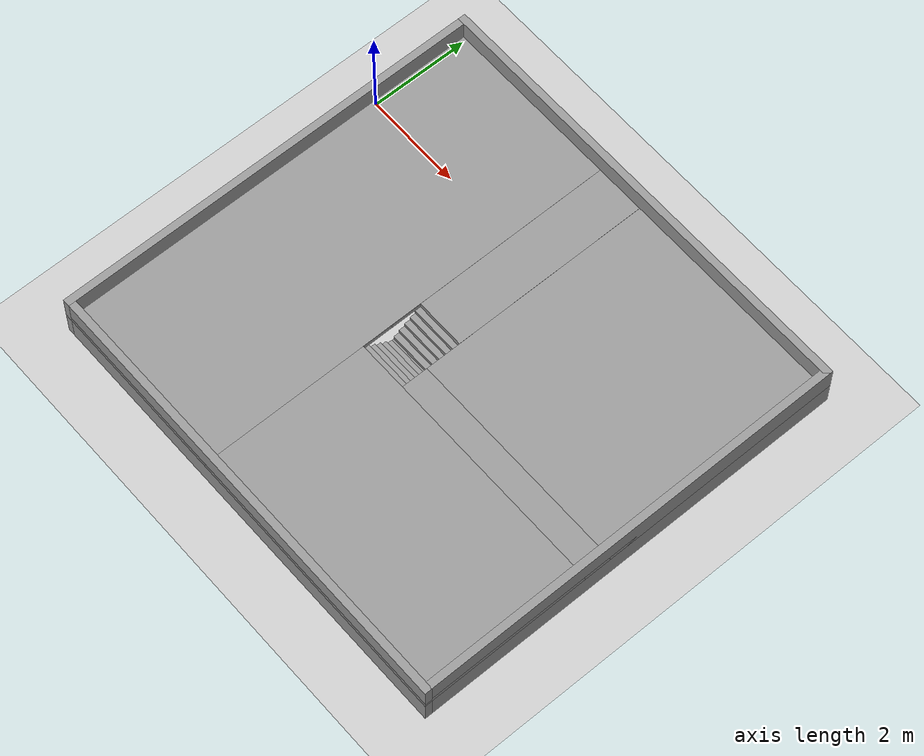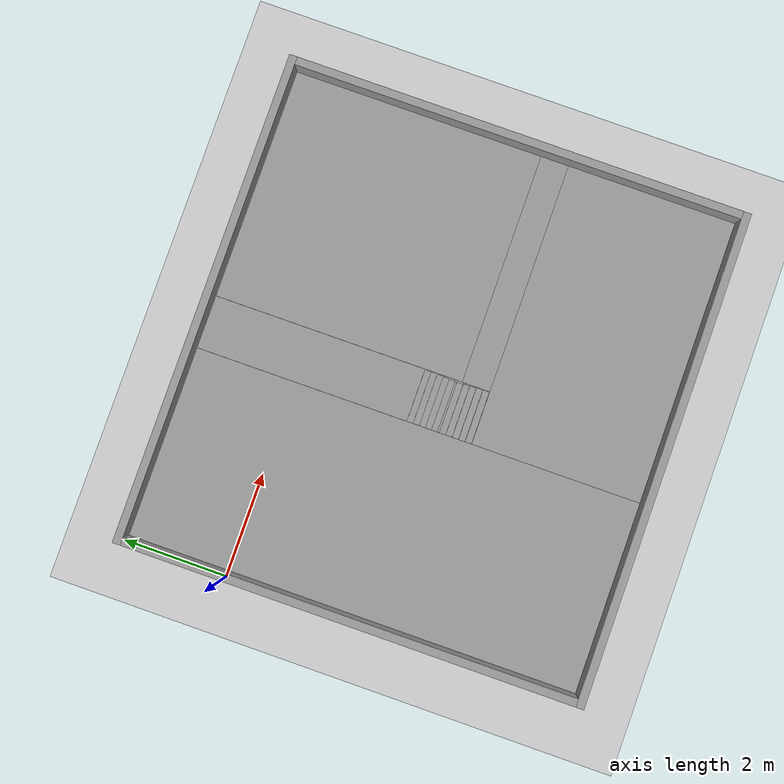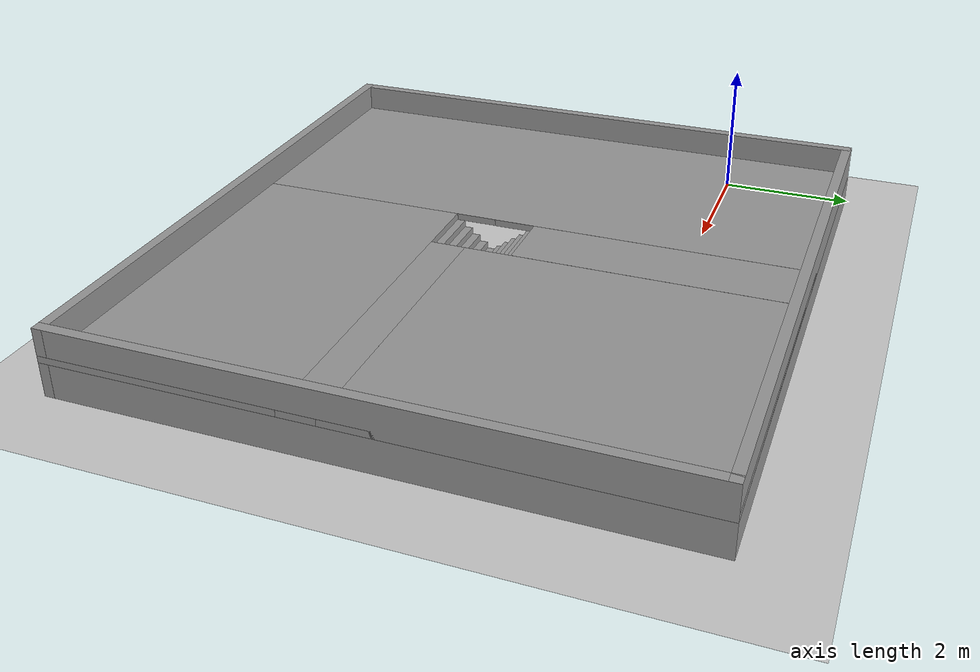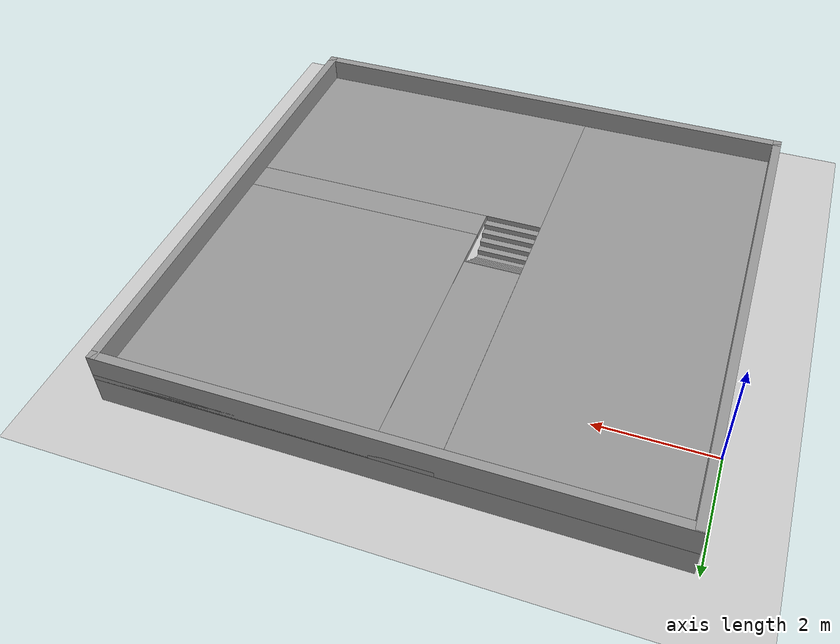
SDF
<sdf version="1.6">
 <world name="default">
  <light name="sun" type="directional">
   <pose>0 0 10 0 -0 0</pose>
   <diffuse>0.8 0.8 0.8 1</diffuse>
   <specular>0.2 0.2 0.2 1</specular>
   <attenuation>
    <range>1000</range>
    <constant>0.9</constant>
    <linear>0.01</linear>
    <quadratic>0.001</quadratic>
   </attenuation>
   <direction>-0.5 0.1 -0.9</direction>
  </light>
  <model name="ground_plane">
   <static>1</static>
   <link name="link">
    <collision name="collision">
     <geometry><plane><normal>0 0 1</normal><size>100 100</size></plane></geometry>
     <surface>
      <contact><collide_bitmask>65535</collide_bitmask></contact>
      <friction><ode><mu>100</mu><mu2>50</mu2></ode></friction>
     </surface>
    </collision>
    <visual name="visual">
     <cast_shadows>0</cast_shadows>
     <geometry><plane><normal>0 0 1</normal><size>100 100</size></plane></geometry>
     <material>
      <script><uri>file://media/materials/scripts/gazebo.material</uri><name>Gazebo/Grey</name></script>
     </material>
    </visual>
   </link>
  </model>
  <gravity>0 0 -9.8</gravity>
  <magnetic_field>6e-06 2.3e-05 -4.2e-05</magnetic_field>
  <atmosphere type="adiabatic"/>
  <physics name="default_physics" default="0" type="ode">
   <max_step_size>0.001</max_step_size>
   <real_time_factor>1</real_time_factor>
   <real_time_update_rate>1000</real_time_update_rate>
  </physics>
  <scene><ambient>0.4 0.4 0.4 1</ambient><background>0.7 0.7 0.7 1</background><shadows>1</shadows></scene>
  <spherical_coordinates>
   <surface_model>EARTH_WGS84</surface_model>
   <latitude_deg>0</latitude_deg>
   <longitude_deg>0</longitude_deg>
   <elevation>0</elevation>
   <heading_deg>0</heading_deg>
  </spherical_coordinates>
  <model name="test_house">
   <pose>4.7 -2.41011 0 0 -0 0</pose>
   <link name="Floor_0">
    <pose>-0 0 0.5 0 -0 0</pose>
    <visual name="Floor_0_Visual_0">
     <pose>-2.7625 0 0.05 0 -0 0</pose>
     <geometry><box><size>3.725 8.76621 0.1</size></box></geometry>
     <material>
      <script><uri>file://media/materials/scripts/gazebo.material</uri><name>Gazebo/Grey</name></script>
      <ambient>1 1 1 1</ambient>
     </material>
     <meta><layer>1</layer></meta>
    </visual>
    <collision name="Floor_0_Collision_0">
     <geometry><box><size>3.725 8.76621 0.1</size></box></geometry>
     <pose>-2.7625 0 0.05 0 -0 0</pose>
    </collision>
    <visual name="Floor_0_Visual_1">
     <pose>1.8625 -2.7065 0.05 0 -0 0</pose>
     <geometry><box><size>5.525 3.35321 0.1</size></box></geometry>
     <material>
      <script><uri>file://media/materials/scripts/gazebo.material</uri><name>Gazebo/Grey</name></script>
      <ambient>1 1 1 1</ambient>
     </material>
     <meta><layer>1</layer></meta>
    </visual>
    <collision name="Floor_0_Collision_1">
     <geometry><box><size>5.525 3.35321 0.1</size></box></geometry>
     <pose>1.8625 -2.7065 0.05 0 -0 0</pose>
    </collision>
    <visual name="Floor_0_Visual_2">
     <pose>2.3625 -0.764894 0.05 0 -0 0</pose>
     <geometry><box><size>4.525 0.53 0.1</size></box></geometry>
     <material>
      <script><uri>file://media/materials/scripts/gazebo.material</uri><name>Gazebo/Grey</name></script>
      <ambient>1 1 1 1</ambient>
     </material>
     <meta><layer>1</layer></meta>
    </visual>
    <collision name="Floor_0_Collision_2">
     <geometry><box><size>4.525 0.53 0.1</size></box></geometry>
     <pose>2.3625 -0.764894 0.05 0 -0 0</pose>
    </collision>
    <visual name="Floor_0_Visual_3">
     <pose>2.36317 1.94161 0.05 0 -0 0</pose>
     <geometry><box><size>4.52366 4.883 0.1</size></box></geometry>
     <material>
      <script><uri>file://media/materials/scripts/gazebo.material</uri><name>Gazebo/Grey</name></script>
      <ambient>1 1 1 1</ambient>
     </material>
     <meta><layer>1</layer></meta>
    </visual>
    <collision name="Floor_0_Collision_3">
     <geometry><box><size>4.52366 4.883 0.1</size></box></geometry>
     <pose>2.36317 1.94161 0.05 0 -0 0</pose>
    </collision>
    <visual name="Floor_0_Visual_4">
     <pose>-0.899329 1.98161 0.05 0 -0 0</pose>
     <geometry><box><size>0.001342 4.803 0.1</size></box></geometry>
     <material>
      <script><uri>file://media/materials/scripts/gazebo.material</uri><name>Gazebo/Grey</name></script>
      <ambient>1 1 1 1</ambient>
     </material>
     <meta><layer>1</layer></meta>
    </visual>
    <collision name="Floor_0_Collision_4">
     <geometry><box><size>0.001342 4.803 0.1</size></box></geometry>
     <pose>-0.899329 1.98161 0.05 0 -0 0</pose>
    </collision>
    <visual name="Floor_0_Visual_5">
     <pose>-0.399329 2.29661 0.05 0 -0 0</pose>
     <geometry><box><size>0.998658 4.173 0.1</size></box></geometry>
     <material>
      <script><uri>file://media/materials/scripts/gazebo.material</uri><name>Gazebo/Grey</name></script>
      <ambient>1 1 1 1</ambient>
     </material>
     <meta><layer>1</layer></meta>
    </visual>
    <collision name="Floor_0_Collision_5">
     <geometry><box><size>0.998658 4.173 0.1</size></box></geometry>
     <pose>-0.399329 2.29661 0.05 0 -0 0</pose>
    </collision>
   </link>
   <link name="Stairs_1">
    <visual name="Stairs_1_Visual_0">
     <pose>-0.4 -0.480894 0.05 0 -0 0</pose>
     <geometry><box><size>1 0.122 0.1</size></box></geometry>
     <material>
      <script><uri>file://media/materials/scripts/gazebo.material</uri><name>Gazebo/Grey</name></script>
      <ambient>1 1 1 1</ambient>
     </material>
     <meta><layer>0</layer></meta>
    </visual>
    <collision name="Stairs_1_Collision_0">
     <geometry><box><size>1 0.122 0.1</size></box></geometry>
     <pose>-0.4 -0.480894 0.05 0 -0 0</pose>
    </collision>
    <visual name="Stairs_1_Visual_1">
     <pose>-0.4 -0.602894 0.15 0 -0 0</pose>
     <geometry><box><size>1 0.122 0.1</size></box></geometry>
     <material>
      <script><uri>file://media/materials/scripts/gazebo.material</uri><name>Gazebo/Grey</name></script>
      <ambient>1 1 1 1</ambient>
     </material>
     <meta><layer>0</layer></meta>
    </visual>
    <collision name="Stairs_1_Collision_1">
     <geometry><box><size>1 0.122 0.1</size></box></geometry>
     <pose>-0.4 -0.602894 0.15 0 -0 0</pose>
    </collision>
    <visual name="Stairs_1_Visual_2">
     <pose>-0.4 -0.724894 0.25 0 -0 0</pose>
     <geometry><box><size>1 0.122 0.1</size></box></geometry>
     <material>
      <script><uri>file://media/materials/scripts/gazebo.material</uri><name>Gazebo/Grey</name></script>
      <ambient>1 1 1 1</ambient>
     </material>
     <meta><layer>0</layer></meta>
    </visual>
    <collision name="Stairs_1_Collision_2">
     <geometry><box><size>1 0.122 0.1</size></box></geometry>
     <pose>-0.4 -0.724894 0.25 0 -0 0</pose>
    </collision>
    <visual name="Stairs_1_Visual_3">
     <pose>-0.4 -0.846894 0.35 0 -0 0</pose>
     <geometry><box><size>1 0.122 0.1</size></box></geometry>
     <material>
      <script><uri>file://media/materials/scripts/gazebo.material</uri><name>Gazebo/Grey</name></script>
      <ambient>1 1 1 1</ambient>
     </material>
     <meta><layer>0</layer></meta>
    </visual>
    <collision name="Stairs_1_Collision_3">
     <geometry><box><size>1 0.122 0.1</size></box></geometry>
     <pose>-0.4 -0.846894 0.35 0 -0 0</pose>
    </collision>
    <visual name="Stairs_1_Visual_4">
     <pose>-0.4 -0.968894 0.45 0 -0 0</pose>
     <geometry><box><size>1 0.122 0.1</size></box></geometry>
     <material>
      <script><uri>file://media/materials/scripts/gazebo.material</uri><name>Gazebo/Grey</name></script>
      <ambient>1 1 1 1</ambient>
     </material>
     <meta><layer>0</layer></meta>
    </visual>
    <collision name="Stairs_1_Collision_4">
     <geometry><box><size>1 0.122 0.1</size></box></geometry>
     <pose>-0.4 -0.968894 0.45 0 -0 0</pose>
    </collision>
   </link>
   <link name="Stairs_3">
    <visual name="Stairs_3_Visual_0">
     <pose>-0.398658 -0.440727 0.041667 0 0 -3.14159</pose>
     <geometry><box><size>1 0.118333 0.083333</size></box></geometry>
     <material>
      <script><uri>file://media/materials/scripts/gazebo.material</uri><name>Gazebo/Grey</name></script>
      <ambient>1 1 1 1</ambient>
     </material>
     <meta><layer>0</layer></meta>
    </visual>
    <collision name="Stairs_3_Collision_0">
     <geometry><box><size>1 0.118333 0.083333</size></box></geometry>
     <pose>-0.398658 -0.440727 0.041667 0 0 -3.14159</pose>
    </collision>
    <visual name="Stairs_3_Visual_1">
     <pose>-0.398658 -0.322394 0.125 0 0 -3.14159</pose>
     <geometry><box><size>1 0.118333 0.083333</size></box></geometry>
     <material>
      <script><uri>file://media/materials/scripts/gazebo.material</uri><name>Gazebo/Grey</name></script>
      <ambient>1 1 1 1</ambient>
     </material>
     <meta><layer>0</layer></meta>
    </visual>
    <collision name="Stairs_3_Collision_1">
     <geometry><box><size>1 0.118333 0.083333</size></box></geometry>
     <pose>-0.398658 -0.322394 0.125 0 0 -3.14159</pose>
    </collision>
    <visual name="Stairs_3_Visual_2">
     <pose>-0.398658 -0.20406 0.208333 0 0 -3.14159</pose>
     <geometry><box><size>1 0.118333 0.083333</size></box></geometry>
     <material>
      <script><uri>file://media/materials/scripts/gazebo.material</uri><name>Gazebo/Grey</name></script>
      <ambient>1 1 1 1</ambient>
     </material>
     <meta><layer>0</layer></meta>
    </visual>
    <collision name="Stairs_3_Collision_2">
     <geometry><box><size>1 0.118333 0.083333</size></box></geometry>
     <pose>-0.398658 -0.20406 0.208333 0 0 -3.14159</pose>
    </collision>
    <visual name="Stairs_3_Visual_3">
     <pose>-0.398658 -0.085727 0.291667 0 0 -3.14159</pose>
     <geometry><box><size>1 0.118333 0.083333</size></box></geometry>
     <material>
      <script><uri>file://media/materials/scripts/gazebo.material</uri><name>Gazebo/Grey</name></script>
      <ambient>1 1 1 1</ambient>
     </material>
     <meta><layer>0</layer></meta>
    </visual>
    <collision name="Stairs_3_Collision_3">
     <geometry><box><size>1 0.118333 0.083333</size></box></geometry>
     <pose>-0.398658 -0.085727 0.291667 0 0 -3.14159</pose>
    </collision>
    <visual name="Stairs_3_Visual_4">
     <pose>-0.398658 0.032606 0.375 0 0 -3.14159</pose>
     <geometry><box><size>1 0.118333 0.083333</size></box></geometry>
     <material>
      <script><uri>file://media/materials/scripts/gazebo.material</uri><name>Gazebo/Grey</name></script>
      <ambient>1 1 1 1</ambient>
     </material>
     <meta><layer>0</layer></meta>
    </visual>
    <collision name="Stairs_3_Collision_4">
     <geometry><box><size>1 0.118333 0.083333</size></box></geometry>
     <pose>-0.398658 0.032606 0.375 0 0 -3.14159</pose>
    </collision>
    <visual name="Stairs_3_Visual_5">
     <pose>-0.398658 0.15094 0.458333 0 0 -3.14159</pose>
     <geometry><box><size>1 0.118333 0.083333</size></box></geometry>
     <material>
      <script><uri>file://media/materials/scripts/gazebo.material</uri><name>Gazebo/Grey</name></script>
      <ambient>1 1 1 1</ambient>
     </material>
     <meta><layer>0</layer></meta>
    </visual>
    <collision name="Stairs_3_Collision_5">
     <geometry><box><size>1 0.118333 0.083333</size></box></geometry>
     <pose>-0.398658 0.15094 0.458333 0 0 -3.14159</pose>
    </collision>
   </link>
   <link name="Wall_10">
    <collision name="Wall_10_Collision">
     <geometry><box><size>8.766 0.15 0.5</size></box></geometry>
     <pose>0 0 0.25 0 -0 0</pose>
    </collision>
    <visual name="Wall_10_Visual">
     <pose>0 0 0.25 0 -0 0</pose>
     <geometry><box><size>8.766 0.15 0.5</size></box></geometry>
     <material>
      <script><uri>file://media/materials/scripts/gazebo.material</uri><name>Gazebo/Grey</name></script>
      <ambient>1 1 1 1</ambient>
     </material>
     <meta><layer>1</layer></meta>
    </visual>
    <pose>4.55 0.000106 0.5 0 -0 -1.5708</pose>
   </link>
   <link name="Wall_11">
    <collision name="Wall_11_Collision">
     <geometry><box><size>9.25 0.15 0.5</size></box></geometry>
     <pose>0 0 0.25 0 -0 0</pose>
    </collision>
    <visual name="Wall_11_Visual">
     <pose>0 0 0.25 0 -0 0</pose>
     <geometry><box><size>9.25 0.15 0.5</size></box></geometry>
     <material>
      <script><uri>file://media/materials/scripts/gazebo.material</uri><name>Gazebo/Grey</name></script>
      <ambient>1 1 1 1</ambient>
     </material>
     <meta><layer>1</layer></meta>
    </visual>
    <pose>-0 -4.30789 0.5 0 -0 3.14159</pose>
   </link>
   <link name="Wall_2">
    <collision name="Wall_2_Collision">
     <geometry><box><size>8.75 0.15 0.5</size></box></geometry>
     <pose>0 0 0.25 0 -0 0</pose>
    </collision>
    <visual name="Wall_2_Visual">
     <pose>0 0 0.25 0 -0 0</pose>
     <geometry><box><size>8.75 0.15 0.5</size></box></geometry>
     <material>
      <script><uri>file://media/materials/scripts/gazebo.material</uri><name>Gazebo/Grey</name></script>
      <ambient>1 1 1 1</ambient>
     </material>
     <meta><layer>0</layer></meta>
    </visual>
    <pose>-4.55 -0.008106 0 0 -0 1.5708</pose>
   </link>
   <link name="Wall_3">
    <collision name="Wall_3_Collision">
     <geometry><box><size>9.25 0.15 0.5</size></box></geometry>
     <pose>0 0 0.25 0 -0 0</pose>
    </collision>
    <visual name="Wall_3_Visual">
     <pose>0 0 0.25 0 -0 0</pose>
     <geometry><box><size>9.25 0.15 0.5</size></box></geometry>
     <material>
      <script><uri>file://media/materials/scripts/gazebo.material</uri><name>Gazebo/Grey</name></script>
      <ambient>1 1 1 1</ambient>
     </material>
     <meta><layer>0</layer></meta>
    </visual>
    <pose>-0 4.30811 0 0 -0 0</pose>
   </link>
   <link name="Wall_4">
    <collision name="Wall_4_Collision">
     <geometry><box><size>8.766 0.15 0.5</size></box></geometry>
     <pose>0 0 0.25 0 -0 0</pose>
    </collision>
    <visual name="Wall_4_Visual">
     <pose>0 0 0.25 0 -0 0</pose>
     <geometry><box><size>8.766 0.15 0.5</size></box></geometry>
     <material>
      <script><uri>file://media/materials/scripts/gazebo.material</uri><name>Gazebo/Grey</name></script>
      <ambient>1 1 1 1</ambient>
     </material>
     <meta><layer>0</layer></meta>
    </visual>
    <pose>4.55 0.000106 0 0 -0 -1.5708</pose>
   </link>
   <link name="Wall_5">
    <collision name="Wall_5_Collision">
     <geometry><box><size>9.25 0.15 0.5</size></box></geometry>
     <pose>0 0 0.25 0 -0 0</pose>
    </collision>
    <visual name="Wall_5_Visual">
     <pose>0 0 0.25 0 -0 0</pose>
     <geometry><box><size>9.25 0.15 0.5</size></box></geometry>
     <material>
      <script><uri>file://media/materials/scripts/gazebo.material</uri><name>Gazebo/Grey</name></script>
      <ambient>1 1 1 1</ambient>
     </material>
     <meta><layer>0</layer></meta>
    </visual>
    <pose>-0 -4.30789 0 0 -0 3.14159</pose>
   </link>
   <link name="Wall_8">
    <collision name="Wall_8_Collision">
     <geometry><box><size>8.75 0.15 0.5</size></box></geometry>
     <pose>0 0 0.25 0 -0 0</pose>
    </collision>
    <visual name="Wall_8_Visual">
     <pose>0 0 0.25 0 -0 0</pose>
     <geometry><box><size>8.75 0.15 0.5</size></box></geometry>
     <material>
      <script><uri>file://media/materials/scripts/gazebo.material</uri><name>Gazebo/Grey</name></script>
      <ambient>1 1 1 1</ambient>
     </material>
     <meta><layer>1</layer></meta>
    </visual>
    <pose>-4.55 -0.008106 0.5 0 -0 1.5708</pose>
   </link>
   <link name="Wall_9">
    <collision name="Wall_9_Collision">
     <geometry><box><size>9.25 0.15 0.5</size></box></geometry>
     <pose>0 0 0.25 0 -0 0</pose>
    </collision>
    <visual name="Wall_9_Visual">
     <pose>0 0 0.25 0 -0 0</pose>
     <geometry><box><size>9.25 0.15 0.5</size></box></geometry>
     <material>
      <script><uri>file://media/materials/scripts/gazebo.material</uri><name>Gazebo/Grey</name></script>
      <ambient>1 1 1 1</ambient>
     </material>
     <meta><layer>1</layer></meta>
    </visual>
    <pose>-0 4.30811 0.5 0 -0 0</pose>
   </link>
   <static>1</static>
  </model>
 </world>
</sdf>
